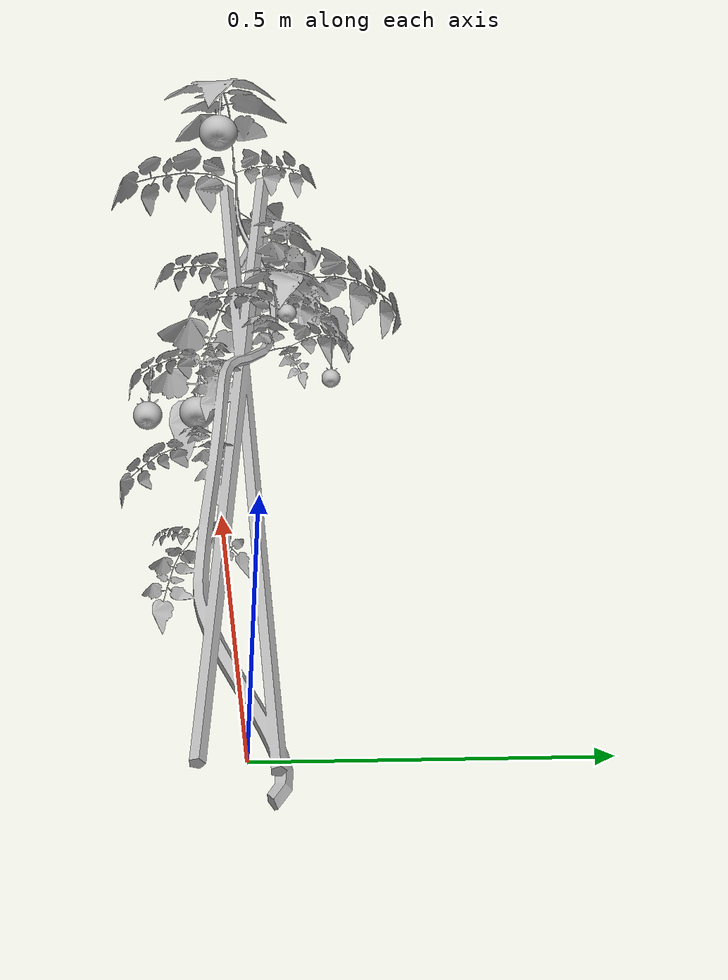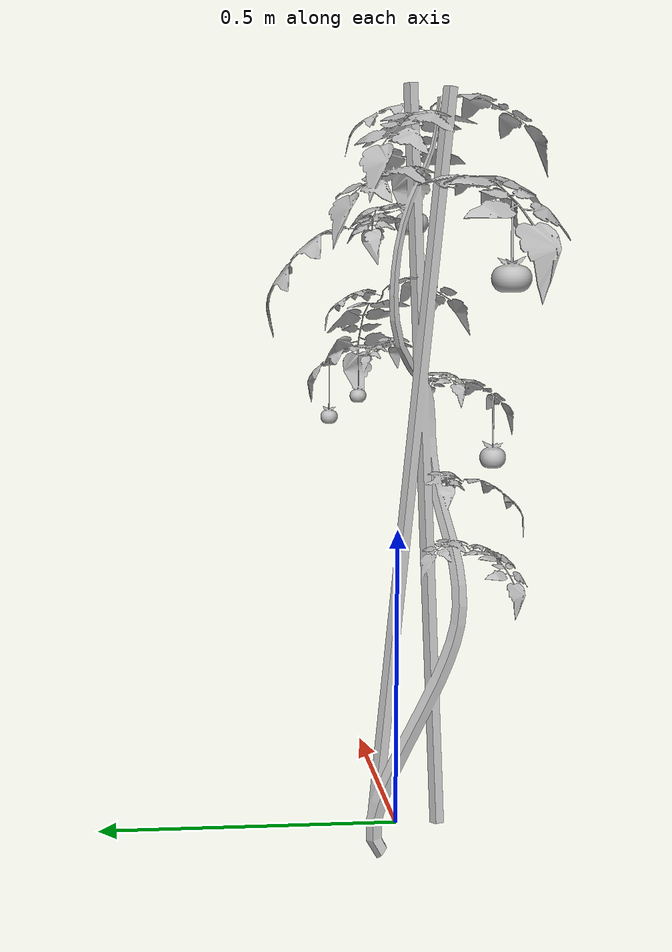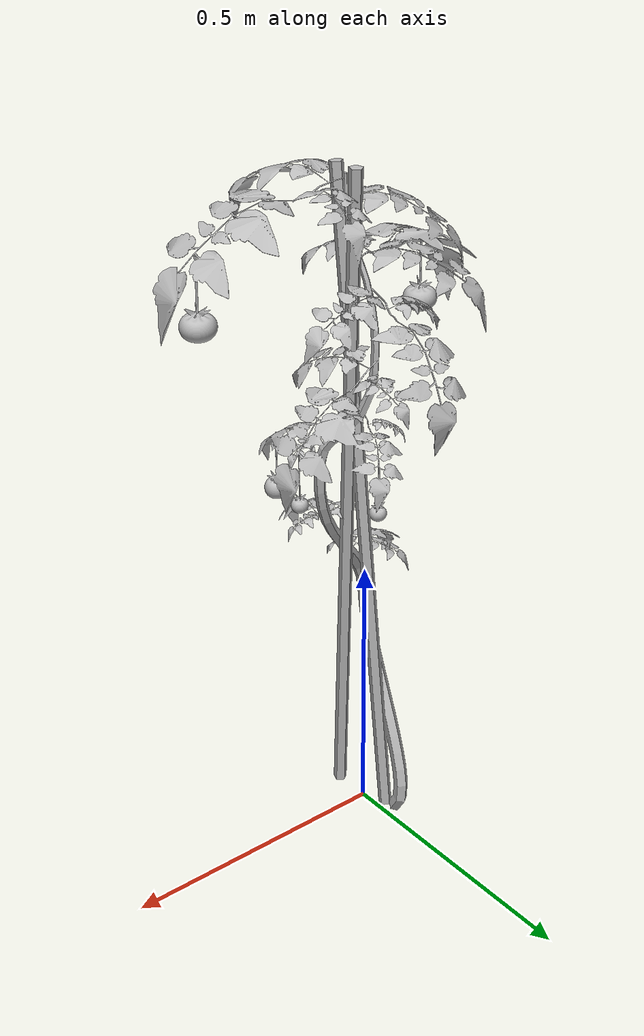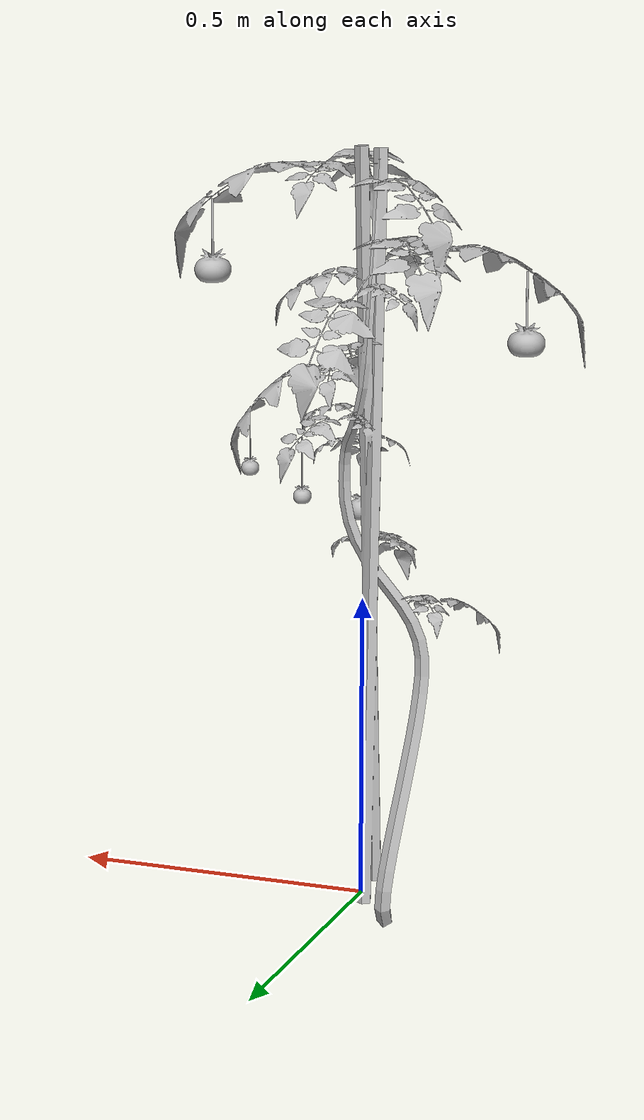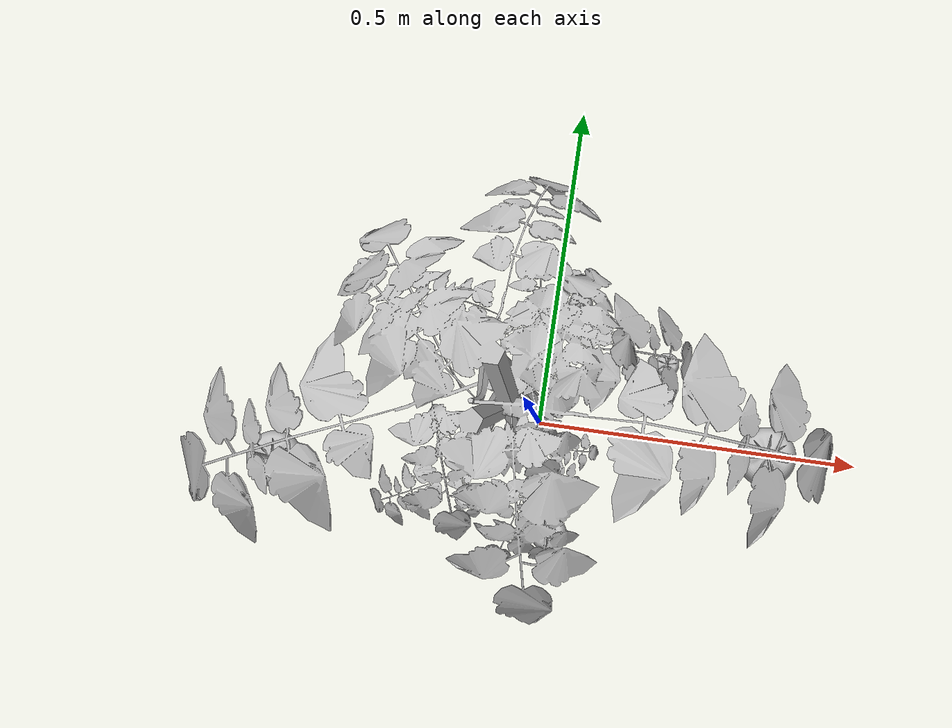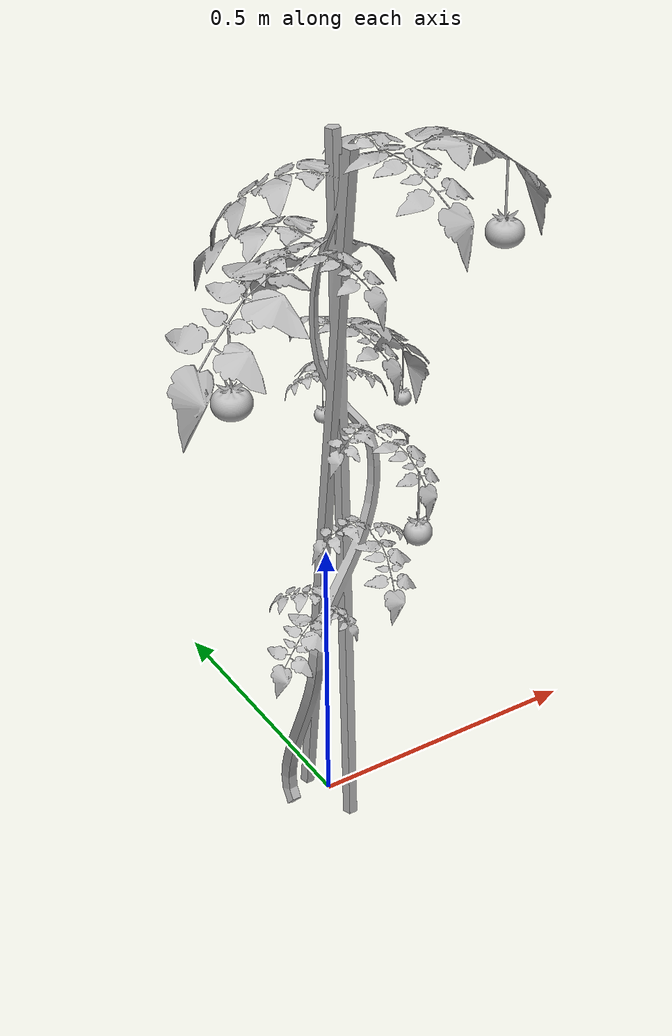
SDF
<?xml version="1.0"?>
<sdf version="1.6">
    <model name="tomato_plant_t2">
	<static>false</static>
      <link name="tomato_plant_link">

        <inertial>
          <pose>0 0 0 0 0 0</pose>
          <mass>20</mass>
          <inertia>
            <ixx>0.2006</ixx>
            <ixy>0</ixy>
            <ixz>0</ixz>
            <iyy>0.2006</iyy>
            <iyz>0</iyz>
            <izz>0.4</izz>
          </inertia>
        </inertial>

        <visual name="visual">
          <pose>0 0 0 0 0 0</pose>
          <geometry>
            <mesh><uri>model://tomato_plant_2/meshes/tomato_plant_2.obj</uri></mesh>
          </geometry>
        </visual>
        <collision name="collision">
          <pose>0 0 0.01 0 0 0</pose>
       <geometry>
          <cylinder>
            <radius>0.2</radius>
            <length>0.02</length>
          </cylinder>
        </geometry>
        </collision>
      </link>

<!-- tomatoes -->

          <link name="t_link_6">
        <pose>-0.23014 -0.132697 0.911579 0 0 0</pose>
        <inertial>
          <mass>0.001</mass>
          <inertia>
            <ixx>3.6e-03</ixx>
            <ixy>0</ixy>
            <ixz>0</ixz>
            <iyy>3.6e-03</iyy>
            <iyz>0</iyz>
            <izz>3.6e-03</izz>
          </inertia>
        </inertial>

      <surface>
        <friction>
          <ode>
            <mu>100000</mu>
            <mu2>100000</mu2>
          </ode>
        </friction>
      </surface>
        <collision name="collision">
          <geometry>
            <sphere><radius>0.024</radius></sphere>
          </geometry>
        </collision>
        <visual name="visual">
          <geometry>
            <mesh><uri>model://red_tomato/meshes/red_tomato.obj</uri></mesh>
          </geometry>
        </visual>
      </link>
      <joint name="t_joint_6" type="fixed">
        <parent>tomato_plant_link</parent>
        <child>t_link_6</child>
        <axis>
          <xyz>0 0 1</xyz>
          <use_parent_model_frame>true</use_parent_model_frame>
        </axis>
        <sensor name="force_torque" type="force_torque">
          <always_on>true</always_on>
          <update_rate>100</update_rate>
          <plugin name="breakable_6" filename="libBreakableJointPlugin.so">
            <breaking_force_N>10</breaking_force_N>
          </plugin>
        </sensor>
      </joint>

 <link name="t_link_8">
        <pose>0.284181 -0.063758 1.01928 0 0 0</pose>
        <inertial>
          <mass>0.001</mass>
          <inertia>
            <ixx>3.6e-03</ixx>
            <ixy>0</ixy>
            <ixz>0</ixz>
            <iyy>3.6e-03</iyy>
            <iyz>0</iyz>
            <izz>3.6e-03</izz>
          </inertia>
        </inertial>

      <surface>
        <friction>
          <ode>
            <mu>100000</mu>
            <mu2>100000</mu2>
          </ode>
        </friction>
      </surface>
        <collision name="collision">
          <geometry>
            <sphere><radius>0.02</radius></sphere>
          </geometry>
        </collision>
        <visual name="visual">
          <geometry>
            <mesh><uri>model://red_tomato/meshes/red_tomato.obj</uri></mesh>
          </geometry>
        </visual>
      </link>
      <joint name="t_joint_8" type="fixed">
        <parent>tomato_plant_link</parent>
        <child>t_link_8</child>
        <axis>
          <xyz>0 0 1</xyz>
          <use_parent_model_frame>true</use_parent_model_frame>
        </axis>
        <sensor name="force_torque" type="force_torque">
          <always_on>true</always_on>
          <update_rate>100</update_rate>
          <plugin name="breakable_8" filename="libBreakableJointPlugin.so">
            <breaking_force_N>10</breaking_force_N>
          </plugin>
        </sensor>
      </joint>

    </model>
</sdf>
